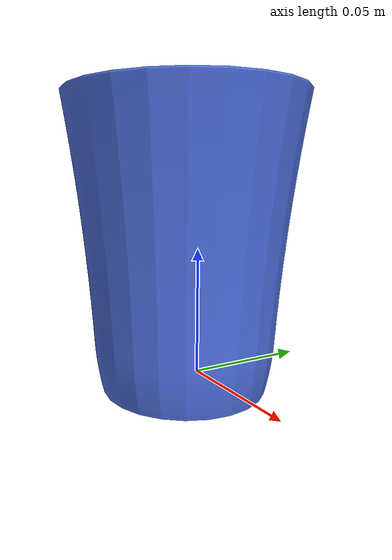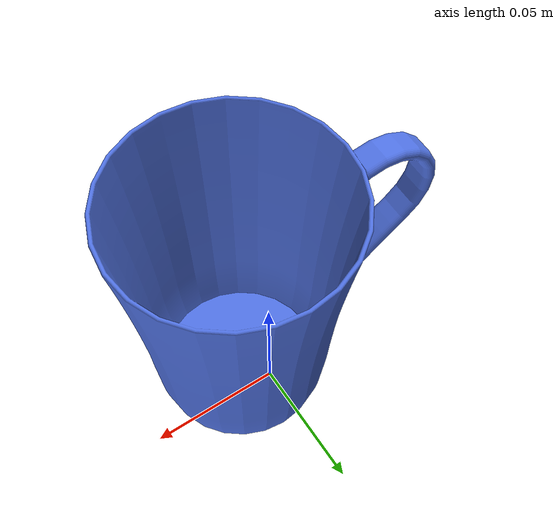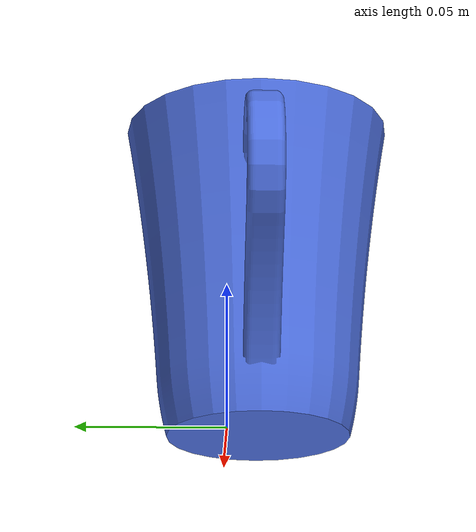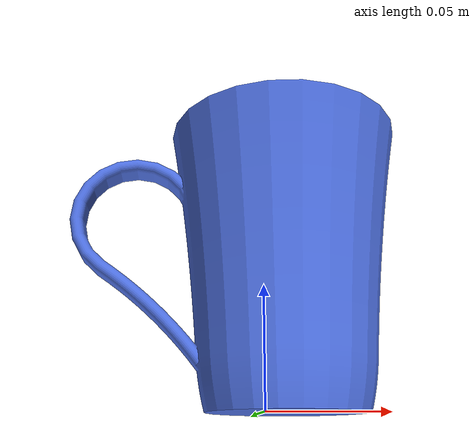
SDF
<?xml version='1.0'?>
<sdf version='1.6'>
  <model name='cup_blue'>
    <link name='link_13'>
       <visual name='visual'>
        <geometry>
          <mesh>
            <uri>model://cup_blue/meshes/cup1.dae</uri>
            <scale>1 1 1</scale>
          </mesh>
        </geometry>
        <material>
          <lighting>1</lighting>
          <ambient>0.305 0.439 0.882 1</ambient>
          <diffuse>0.305 0.439 0.882 1</diffuse>
          <specular>0.01 0.01 0.01 1</specular>
          <emissive>0 0 0 1</emissive>
          <shader type='vertex'>
            <normal_map>__default__</normal_map>
          </shader>
        </material>
        <cast_shadows>1</cast_shadows>
        <transparency>0</transparency>
      </visual>
      <collision name='collision'>
        <laser_retro>0</laser_retro>
        <max_contacts>10</max_contacts>
        <pose frame=''>0 0 0 0 -0 0</pose>
        <geometry>
          <mesh>
            <uri>model://cup_blue/meshes/cup1.dae</uri>
            <scale>1 1 1</scale>
          </mesh>
        </geometry>
      </collision>
    </link>
    <static>1</static>
    <allow_auto_disable>1</allow_auto_disable>
  </model>
</sdf>
